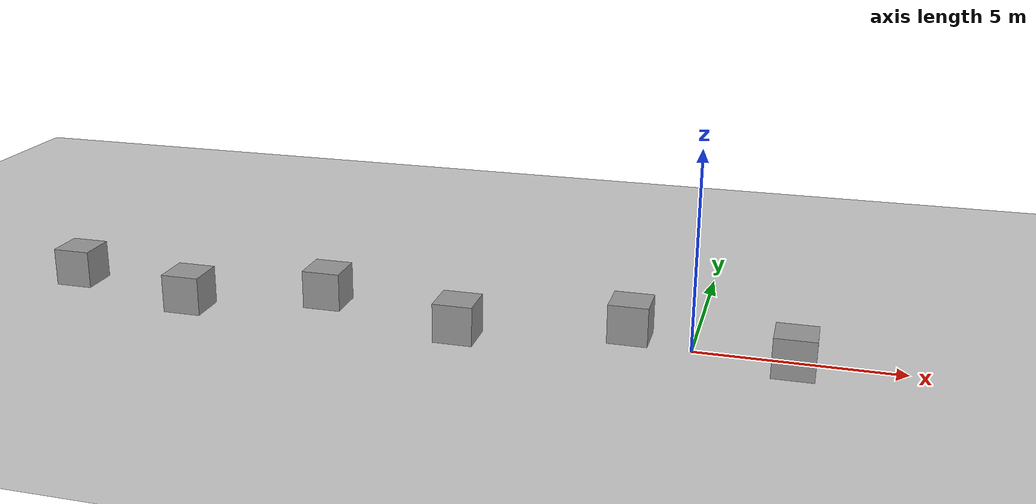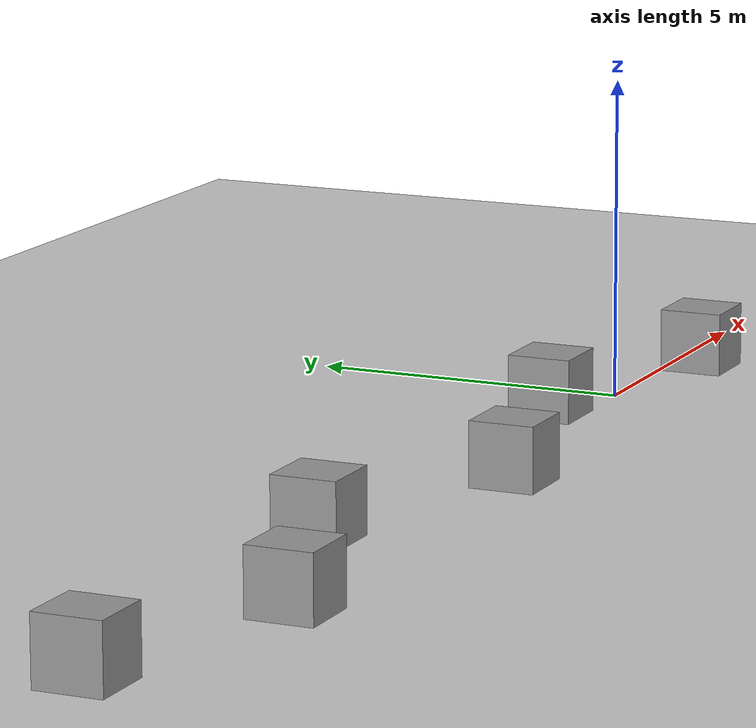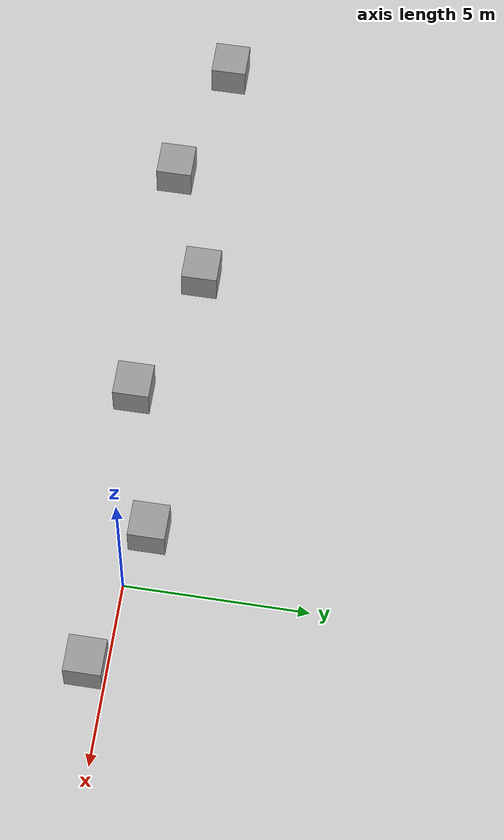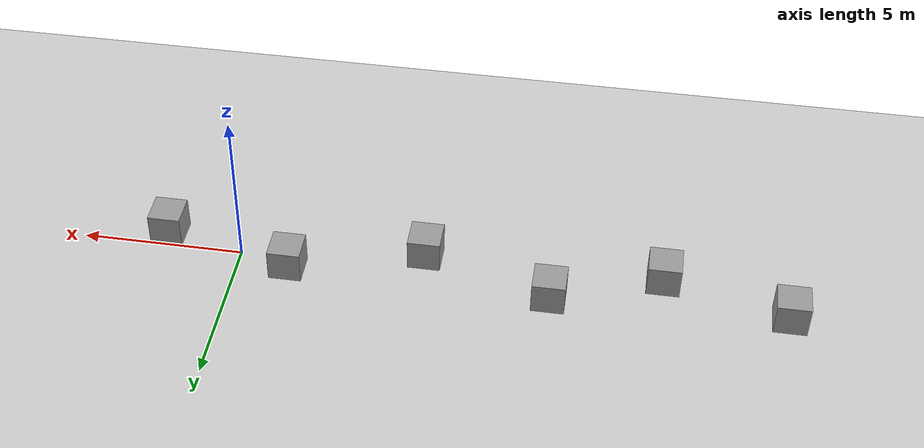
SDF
<sdf version="1.6">
 <world name="default">
  <model name="ground_plane">
   <static>1</static>
   <link name="link">
    <collision name="collision">
     <geometry><plane><normal>0 0 1</normal><size>100 100</size></plane></geometry>
     <surface><friction><ode><mu>100</mu><mu2>50</mu2></ode></friction></surface>
    </collision>
    <visual name="visual">
     <cast_shadows>0</cast_shadows>
     <geometry><plane><normal>0 0 1</normal><size>100 100</size></plane></geometry>
     <material>
      <script><uri>file://media/materials/scripts/gazebo.material</uri><name>Gazebo/Grey</name></script>
     </material>
    </visual>
   </link>
  </model>
  <model name="unit_box_0">
   <pose>2.41589 -0.530372 0.499995 0 1e-05 0</pose>
   <link name="link">
    <inertial>
     <mass>1</mass>
     <inertia>
      <ixx>0.166667</ixx>
      <ixy>0</ixy>
      <ixz>0</ixz>
      <iyy>0.166667</iyy>
      <iyz>0</iyz>
      <izz>0.166667</izz>
     </inertia>
    </inertial>
    <collision name="collision"><geometry><box><size>1 1 1</size></box></geometry></collision>
    <visual name="visual">
     <geometry><box><size>1 1 1</size></box></geometry>
     <material>
      <script><name>Gazebo/Grey</name><uri>file://media/materials/scripts/gazebo.material</uri></script>
     </material>
    </visual>
   </link>
  </model>
  <model name="unit_box_1">
   <pose>-1.56061 0.448995 0.499995 -1e-05 0 0</pose>
   <link name="link">
    <inertial>
     <mass>1</mass>
     <inertia>
      <ixx>0.166667</ixx>
      <ixy>0</ixy>
      <ixz>0</ixz>
      <iyy>0.166667</iyy>
      <iyz>0</iyz>
      <izz>0.166667</izz>
     </inertia>
    </inertial>
    <collision name="collision"><geometry><box><size>1 1 1</size></box></geometry></collision>
    <visual name="visual">
     <geometry><box><size>1 1 1</size></box></geometry>
     <material>
      <script><name>Gazebo/Grey</name><uri>file://media/materials/scripts/gazebo.material</uri></script>
     </material>
    </visual>
   </link>
  </model>
  <model name="unit_box_2">
   <pose>-5.65055 -0.673456 0.499995 0 1e-05 0</pose>
   <link name="link">
    <inertial>
     <mass>1</mass>
     <inertia>
      <ixx>0.166667</ixx>
      <ixy>0</ixy>
      <ixz>0</ixz>
      <iyy>0.166667</iyy>
      <iyz>0</iyz>
      <izz>0.166667</izz>
     </inertia>
    </inertial>
    <collision name="collision"><geometry><box><size>1 1 1</size></box></geometry></collision>
    <visual name="visual">
     <geometry><box><size>1 1 1</size></box></geometry>
     <material>
      <script><name>Gazebo/Grey</name><uri>file://media/materials/scripts/gazebo.material</uri></script>
     </material>
    </visual>
   </link>
  </model>
  <model name="unit_box_3">
   <pose>-9.56215 0.587745 0.499995 -1e-05 0 0</pose>
   <link name="link">
    <inertial>
     <mass>1</mass>
     <inertia>
      <ixx>0.166667</ixx>
      <ixy>0</ixy>
      <ixz>0</ixz>
      <iyy>0.166667</iyy>
      <iyz>0</iyz>
      <izz>0.166667</izz>
     </inertia>
    </inertial>
    <collision name="collision"><geometry><box><size>1 1 1</size></box></geometry></collision>
    <visual name="visual">
     <geometry><box><size>1 1 1</size></box></geometry>
     <material>
      <script><name>Gazebo/Grey</name><uri>file://media/materials/scripts/gazebo.material</uri></script>
     </material>
    </visual>
   </link>
  </model>
  <model name="unit_box_4">
   <pose>-12.9111 -0.676866 0.499995 0 1e-05 0</pose>
   <link name="link">
    <inertial>
     <mass>1</mass>
     <inertia>
      <ixx>0.166667</ixx>
      <ixy>0</ixy>
      <ixz>0</ixz>
      <iyy>0.166667</iyy>
      <iyz>0</iyz>
      <izz>0.166667</izz>
     </inertia>
    </inertial>
    <collision name="collision"><geometry><box><size>1 1 1</size></box></geometry></collision>
    <visual name="visual">
     <geometry><box><size>1 1 1</size></box></geometry>
     <material>
      <script><name>Gazebo/Grey</name><uri>file://media/materials/scripts/gazebo.material</uri></script>
     </material>
    </visual>
   </link>
  </model>
  <model name="unit_box_5">
   <pose>-16.6696 0.339035 0.499995 -1e-05 0 0</pose>
   <link name="link">
    <inertial>
     <mass>1</mass>
     <inertia>
      <ixx>0.166667</ixx>
      <ixy>0</ixy>
      <ixz>0</ixz>
      <iyy>0.166667</iyy>
      <iyz>0</iyz>
      <izz>0.166667</izz>
     </inertia>
    </inertial>
    <collision name="collision"><geometry><box><size>1 1 1</size></box></geometry></collision>
    <visual name="visual">
     <geometry><box><size>1 1 1</size></box></geometry>
     <material>
      <script><name>Gazebo/Grey</name><uri>file://media/materials/scripts/gazebo.material</uri></script>
     </material>
    </visual>
   </link>
  </model>
 </world>
</sdf>
